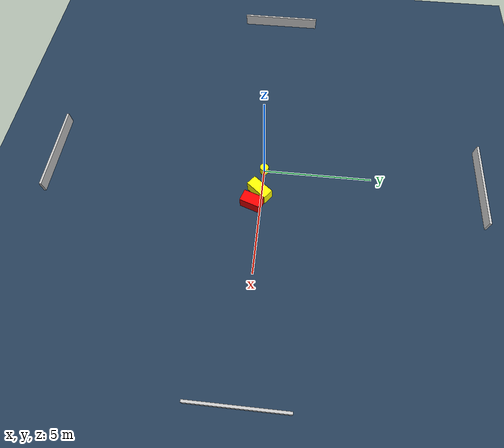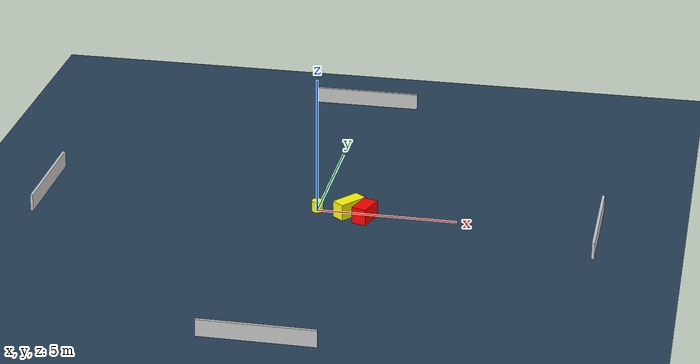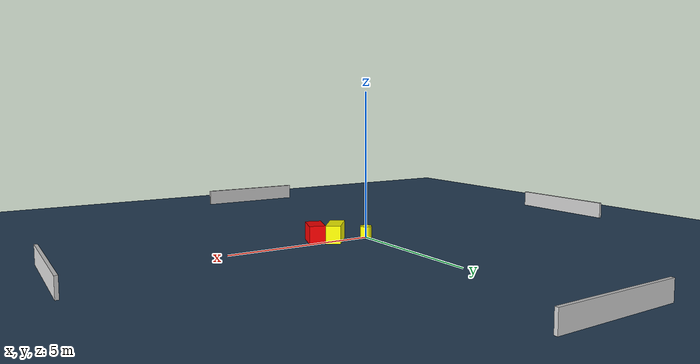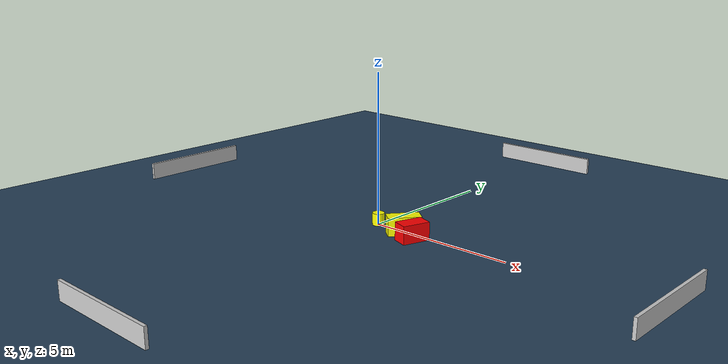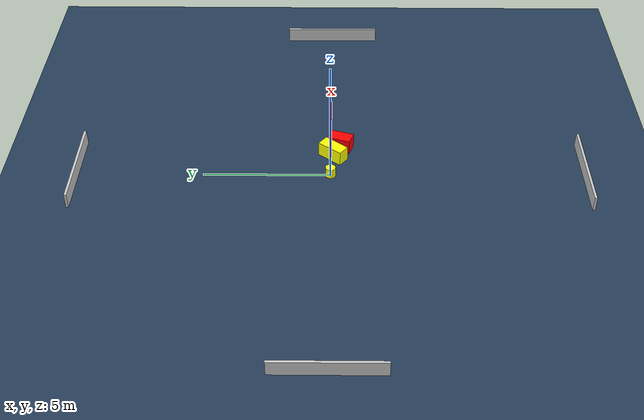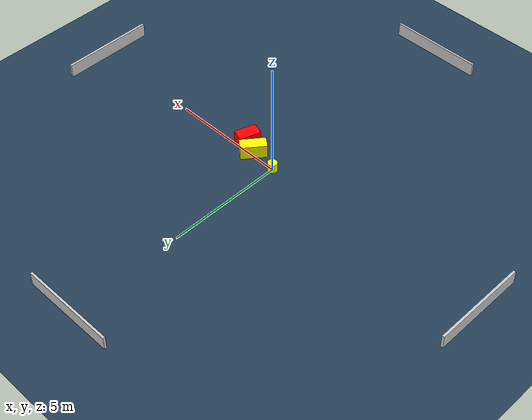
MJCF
<?xml version="1.0" ?>
<mujoco model="generated_environment">
  <option timestep="0.01" integrator="RK4" cone="elliptic"/>
  <default>
    <geom density="1"/>
  </default>
  <asset>
    <texture builtin="gradient" height="3072" name="skybox" rgb1="0.3 0.5 0.7" rgb2="0 0 0" type="skybox" width="512"/>
    <texture builtin="checker" height="300" name="groundplane" rgb1="0.2 0.3 0.4" rgb2="0.1 0.2 0.3" type="2d" width="300"/>
    <material name="groundplane" reflectance="0.2" texrepeat="5 5" texture="groundplane"/>
  </asset>
  <worldbody>
    <light dir="0 0 -1" directional="true" pos="0 0 1.5"/>
    <geom condim="3" friction="0.5 0.005 0.001" material="groundplane" name="floor" pos="0 0 0" size="0 0 0.05" type="plane"/>
    <body name="walls">
      <geom name="wall_1" condim="4" pos="-10.0 0.0 0.3" rgba="0.800000011920929 0.800000011920929 0.800000011920929 1.0" size="0.05 2.0 0.3" type="box"/>
      <geom name="wall_2" condim="4" pos="10.0 0.0 0.3" rgba="0.800000011920929 0.800000011920929 0.800000011920929 1.0" size="0.05 2.0 0.3" type="box"/>
      <geom name="wall_3" condim="4" pos="0.0 -10.0 0.3" rgba="0.800000011920929 0.800000011920929 0.800000011920929 1.0" size="2.0 0.05 0.3" type="box"/>
      <geom name="wall_4" condim="4" pos="0.0 10.0 0.3" rgba="0.800000011920929 0.800000011920929 0.800000011920929 1.0" size="2.0 0.05 0.3" type="box"/>
    </body>
    <body name="robot">
      <joint name="joint_x" type="slide" pos="0 0 0" axis="1 0 0"/>
      <joint name="joint_y" type="slide" pos="0 0 0" axis="0 1 0"/>
      <geom name="robot" type="cylinder" pos="0.0 0.0 0.2" size="0.2 0.2 0.0" mass="5.0" friction="1.0 0.005 0.0001" condim="4" rgba="1.0 1.0 0.0 1.0"/>
    </body>
    <body name="obstacle_1_movable">
      <geom name="obstacle_1_movable" condim="4" pos="1.1725270321982246 -0.0963779406063789 0.3" euler="0 0 141.58594571841027" friction="0.0 0.005 0.001" rgba="1.0 1.0 0.0 1.0" size="0.24905631290595892 0.542340496689663 0.3" type="box" mass="0.1"/>
      <joint type="free"/>
    </body>
    <body name="obstacle_2_static">
      <geom name="obstacle_2_static" condim="4" pos="1.782666959265597 -0.3924578746233514 0.3" euler="0 0 251.38085890534876" friction="0.0 0.005 0.001" rgba="1.0 0.0 0.0 1.0" size="0.46269805290685606 0.2685575417892285 0.3" type="box"/>
    </body>
  </worldbody>
  <actuator>
    <motor name="actuator_x" joint="joint_x" gear="1" ctrlrange="-1 1"/>
    <motor name="actuator_y" joint="joint_y" gear="1" ctrlrange="-1 1"/>
  </actuator>
</mujoco>
